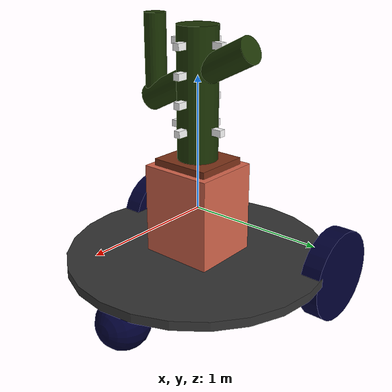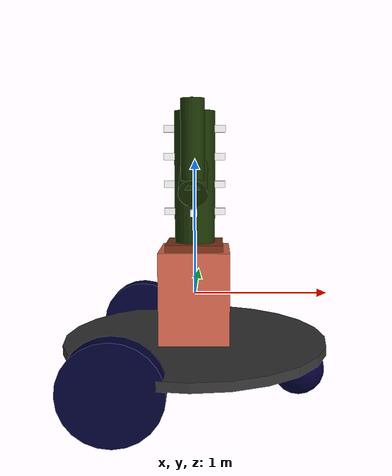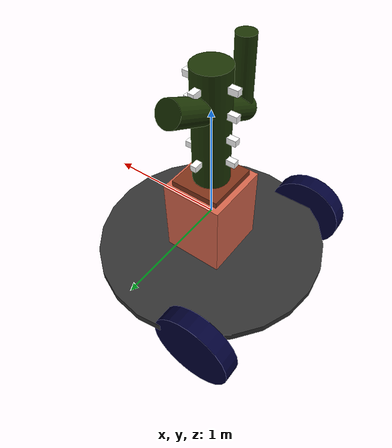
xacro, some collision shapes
<?xml version="1.0"?>
<robot name="kak" xmlns:xacro="http://ros.org/wiki/xacro">

 <xacro:include filename="depth.urdf.xacro" />
 <xacro:include filename="gazebo.urdf.xacro" />

  <material name="Gray">
    <color rgba="0.2 0.2 0.2 1.0"/>
  </material>

  <material name="Pink">
    <color rgba="0.84 0.4 0.3 0.9"/>
  </material>

  <material name="Brown">
    <color rgba="0.5 0.2 0.1 1.0"/>
  </material>

  <material name="Green">
    <color rgba="0.112 0.21 0.021 1.0"/>
  </material>

  <material name="White">
    <color rgba="1 1 1 1.0"/>
  </material>

  <material name="Blue">
    <color rgba="0 0 0.2 1.0"/>
  </material>

   <!-- Define intertial property macros  -->
  <xacro:macro name="box_inertia" params="m w h d">
    <inertial>
      <origin xyz="0 0 0" rpy="${pi/2} 0 ${pi/2}"/>
      <mass value="${m}"/>
      <inertia ixx="${(m/12) * (h*h + d*d)}" ixy="0.0" ixz="0.0" iyy="${(m/12) * (w*w + d*d)}" iyz="0.0" izz="${(m/12) * (w*w + h*h)}"/>
    </inertial>
  </xacro:macro>

  <xacro:macro name="cylinder_inertia" params="m r h">
    <inertial>
      <origin xyz="0 0 0" rpy="${pi/2} 0 0" />
      <mass value="${m}"/>
      <inertia ixx="${(m/12) * (3*r*r + h*h)}" ixy = "0" ixz = "0" iyy="${(m/12) * (3*r*r + h*h)}" iyz = "0" izz="${(m/2) * (r*r)}"/>
    </inertial>
  </xacro:macro>

  <xacro:macro name="sphere_inertia" params="m r">
    <inertial>
      <mass value="${m}"/>
      <inertia ixx="${(2/5) * m * (r*r)}" ixy="0.0" ixz="0.0" iyy="${(2/5) * m * (r*r)}" iyz="0.0" izz="${(2/5) * m * (r*r)}"/>
    </inertial>
  </xacro:macro>

  <!--Base link-->
  <link name="base_link">
  </link>

  <!-- Robot Footprint -->
  <link name="base_footprint"/>

  <joint name="base_joint" type="fixed">
    <parent link="base_link"/>
    <child link="base_footprint"/>
    <origin xyz="0.0 0.0 -0.3" rpy="0 0 0"/>
  </joint>

   <link name="stol">
    <visual>
      <origin xyz="0 0 -0.38" rpy="0 0 0"/>
      <geometry>
	  <cylinder radius="1.0" length="0.07"/>
      </geometry>
      <material name="Gray"/>
    </visual>

    <collision>
      <geometry>
        <cylinder radius="1.0" length="0.07"/>
      </geometry>
    </collision>

    <xacro:cylinder_inertia m="0.7" r="1.0" h="0.07"/>
  </link>

  <joint name="stol_joint" type="fixed">
    <parent link="base_link"/>
    <child link="stol"/>
    <origin xyz="0.0 0.0 0.0" rpy="0 0 0"/>
  </joint>

  <!-- * * * Link Definitions * * * -->
  <link name="vaza">
    <visual>
      <geometry>
	<box size="0.52 0.56 0.685"/>
      </geometry>
      <material name="Pink"/>
    </visual>

    <collision>
      <geometry>
        <box size="0.52 0.56 0.685"/>
      </geometry>
    </collision>

    <xacro:box_inertia m="0.5" w="0.52" d="0.56" h="0.685"/>
  </link>

  <joint name="vaza_joint" type="fixed">
    <parent link="stol"/>
    <child link="vaza"/>
    <origin xyz="0 0 0" rpy="0 0 0"/>
  </joint>

  <link name="zemlya">
    <visual>
      <geometry>
	<box size="0.42 0.46 0.585"/>
      </geometry>
      <material name="Brown"/>
    </visual>

    <collision>
      <geometry>
        <box size="0.42 0.46 0.585"/>
      </geometry>
    </collision>

    <xacro:box_inertia m="0.5" w="0.42" d="0.46" h="0.585"/>
  </link>

  <joint name="zemlya_joint" type="fixed">
    <parent link="stol"/>
    <child link="zemlya"/>
    <origin xyz="0 0 0.1" rpy="0 0 0"/>
  </joint>

  <link name="kaktys">
    <visual>
      <geometry>
	<cylinder radius="0.15" length="1.7"/>
      </geometry>
      <material name="Green"/>
    </visual>

    <collision>
      <geometry>
        <cylinder radius="0.15" length="1.7"/>
      </geometry>
    </collision>

    <xacro:cylinder_inertia m="1" r="0.15" h="1.7"/>
  </link>

  <joint name="kaktys_joint" type="fixed">
    <parent link="stol"/>
    <child link="kaktys"/>
    <origin xyz="0 0 0.5" rpy="0 0 0"/>
  </joint>

  <link name="vetka_1">
    <visual>
      <geometry>
	<cylinder radius="0.1" length="1.0"/>
      </geometry>
      <material name="Green"/>
    </visual>

    <collision>
      <geometry>
        <cylinder radius="0.1" length="1.0"/>
      </geometry>
    </collision>

    <xacro:cylinder_inertia m="0.1" r="0.1" h="1.0"/>
  </link>

  <joint name="vetka_1_joint" type="fixed">
    <parent link="kaktys"/>
    <child link="vetka_1"/>
    <origin xyz="0 0 0.5" rpy="90 0 0"/>
  </joint>

  <link name="vetka_2">
    <visual>
      <geometry>
        <cylinder radius="0.08" length="0.6"/>
      </geometry>
      <material name="Green"/>
    </visual>

    <collision>
      <geometry>
        <cylinder radius="0.08" length="0.6"/>
      </geometry>
    </collision>

    <xacro:cylinder_inertia m="0.1" r="0.08" h="0.6"/>
  </link>

  <joint name="vetka_2_joint" type="fixed">
    <parent link="kaktys"/>
    <child link="vetka_2"/>
    <origin xyz="0 -0.4 0.6" rpy="0 0 0"/>
  </joint>

  <xacro:macro name = "igli" params = "prefix z_high a_long b_weight">
    <link name="igla_${prefix}">
      <visual>
        <geometry>
          <box size="${a_long} ${b_weight} 0.05"/>
	</geometry>
	<material name="White"/>
      </visual>

      <collision>
        <geometry>
          <box size="${a_long} ${b_weight} 0.05"/>
        </geometry>
      </collision>

      <xacro:box_inertia m="0.01" w="${a_long}" d="${b_weight}" h="0.05"/>
    </link>

    <joint name="igla_${prefix}_joint" type="fixed">
      <parent link="kaktys"/>
      <child link="igla_${prefix}"/>
      <origin xyz="0 0 ${z_high}" rpy="0 0 0"/>
    </joint>

  </xacro:macro>

  <xacro:igli prefix="1" z_high = "0.1225" a_long = "0.05" b_weight = "0.45" />
  <xacro:igli prefix="2" z_high = "0.1225" a_long = "0.45" b_weight = "0.05" />
  <xacro:igli prefix="3" z_high = "0.3225" a_long = "0.45" b_weight = "0.05" />
  <xacro:igli prefix="4" z_high = "0.5225" a_long = "0.45" b_weight = "0.05" />
  <xacro:igli prefix="5" z_high = "0.7225" a_long = "0.05" b_weight = "0.45" />
  <xacro:igli prefix="6" z_high = "0.7225" a_long = "0.45" b_weight = "0.05" />

    <link name="wheel_1">
      <visual>
       <origin xyz="0 0 0" rpy="1.56 0 0"/>
        <geometry>
          <cylinder radius="0.35" length="0.15"/>
	</geometry>
        <material name="Blue"/>
      </visual>

      <collision>
        <origin xyz="0 0 0" rpy="${pi/2} 0 0"/>
        <geometry>
          <cylinder radius="0.35" length="0.15"/>
        </geometry>
      </collision>

      <xacro:cylinder_inertia m="0.7" r="0.35" h="0.15"/>
    </link>

    <joint name="wheel_1_joint" type="continuous">
      <parent link="base_link"/>
      <child link="wheel_1"/>
      <origin xyz="-0.5 0.9 -0.45" rpy="0 -1.56 0"/>
      <axis xyz="0 1 0"/>
    </joint>

    <link name="wheel_2">
      <visual>
       <origin xyz="0 0 0" rpy="1.56 0 0"/>
        <geometry>
          <cylinder radius="0.35" length="0.15"/>
	</geometry>
        <material name="Blue"/>
      </visual>

      <collision>
        <origin xyz="0 0 0" rpy="${pi/2} 0 0"/>
        <geometry>
          <cylinder radius="0.35" length="0.15"/>
        </geometry>
      </collision>

      <xacro:cylinder_inertia m="0.7" r="0.35" h="0.15"/>
    </link>

    <joint name="wheel_2_joint" type="continuous">
      <parent link="base_link"/>
      <child link="wheel_2"/>
      <origin xyz="-0.5 -0.9 -0.45" rpy="0 1.56 0"/>
      <axis xyz="0 1 0"/>
    </joint>

  <link name="wheel_center">
    <visual>
      <geometry>
        <sphere radius="0.2"/>
      </geometry>
      <material name="Blue"/>
    </visual>

    <collision>
      <geometry>
        <sphere radius="0.2"/>
      </geometry>
    </collision>

    <xacro:sphere_inertia m="1.0" r="0.2"/>
  </link>

  <joint name="wheel_center_joint" type="fixed">
    <parent link="base_link"/>
    <child link="wheel_center"/>
    <origin xyz="0.8 0 -0.6" rpy="0 1.56 0"/>
    <!--axis xyz="0 1 0"/-->
  </joint>

   <gazebo reference="wheel_center">
      <mu1 value="0.001"/>
      <mu2 value="0.001"/>
  </gazebo>

</robot>

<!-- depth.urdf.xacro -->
<robot xmlns:xacro="http://www.ros.org/wiki/xacro">

    <xacro:property name="M_PI" value="3.1415926535897931" />

    <joint name="depth_joint" type="fixed">
        <parent link="base_link"/>
        <child link="depth_frame"/>
        <origin xyz="0.1 0.0 0.17" rpy="0 0.0 0"/>
    </joint>

    <material name="aluminum">
      <color rgba="0.5 0.5 0.5 1"/>
    </material>

    <link name="depth_frame">
        <visual>
            <origin xyz="0.00465 -0.0475 0" rpy="${M_PI/2} 0 ${M_PI/2}"/>
            <geometry>
                <mesh filename="file://$(find circle_movement)/description/d455.stl" scale="0.001 0.001 0.001"/>
                <!--box size="0.026 0.124 0.029"/-->
            </geometry>
            <material name="aluminum"/>
        </visual>
        <collision>
            <origin xyz="0.00465 -0.0475 0" rpy="${M_PI/2} 0 ${M_PI/2}"/>
            <geometry>
                <box size="0.026 0.124 0.029"/>
            </geometry>
        </collision>
        <inertial>
            <origin xyz="0 0 0" rpy="0 0 0"/>
            <mass value="0.116" />
            <inertia ixx="${(1/12) * 0.116 * (0.026*0.026+0.029*0.029)}" ixy="0.0" ixz="0.0"
                     iyy="${(1/12) * 0.116 * (0.124*0.124+0.029*0.029)}" iyz="0.0"
                     izz="${(1/12) * 0.116 * (0.124*0.124+0.026*0.026)}" />
        </inertial>
    </link>

    <gazebo reference="depth_frame">
        <sensor name='depth_sensor_frame' type='depth_camera'>"
            <gz_frame_id>kak/depth_frame</gz_frame_id>
            <pose> 0 0 0 0 0 0 </pose>
            <always_on>true</always_on>
            <update_rate>10</update_rate>
            <camera>
                <horizontal_fov>1.51843645</horizontal_fov>
                <image>
                    <width>848</width>
                    <height>480</height>
                    <format>R_FLOAT32</format>
                </image>
                <clip>
                    <near>0.1</near>
                    <far>10</far>
                </clip>
                <lens>
                    <intrinsics>
                    <fx>421.61578369140625</fx>
                    <fy>421.61578369140625</fy>
                    <cx>422.2854309082031</cx>
                    <cy>236.57237243652344</cy>
                    <s>0</s>
                    </intrinsics>
                </lens>
                <noise>
                    <type>gaussian</type>
                    <mean>0.0</mean>
                    <stddev>0.007</stddev>
                </noise>
            </camera>
        </sensor>
        <sensor name="color_sensor_frame" type="camera">
            <gz_frame_id>kak/depth_frame</gz_frame_id>
            <pose>0 0 0 0 0 0</pose>
            <update_rate>30</update_rate>
            <always_on>true</always_on>
            <camera>
                <horizontal_fov>1.20427718</horizontal_fov>
                <image>
                    <width>848</width>
                    <height>480</height>
                </image>
                <clip>
                    <near>0.1</near>
                    <far>50</far>
                </clip>
                <lens>
                    <intrinsics>
                    <fx>615.9603271484375</fx>
                    <fy>616.227294921875</fy>
                    <cx>419.83026123046875</cx>
                    <cy>245.1431427001953</cy>
                    <s>0</s>
                    </intrinsics>
                </lens>
            </camera>
        </sensor>
    </gazebo>
</robot>
